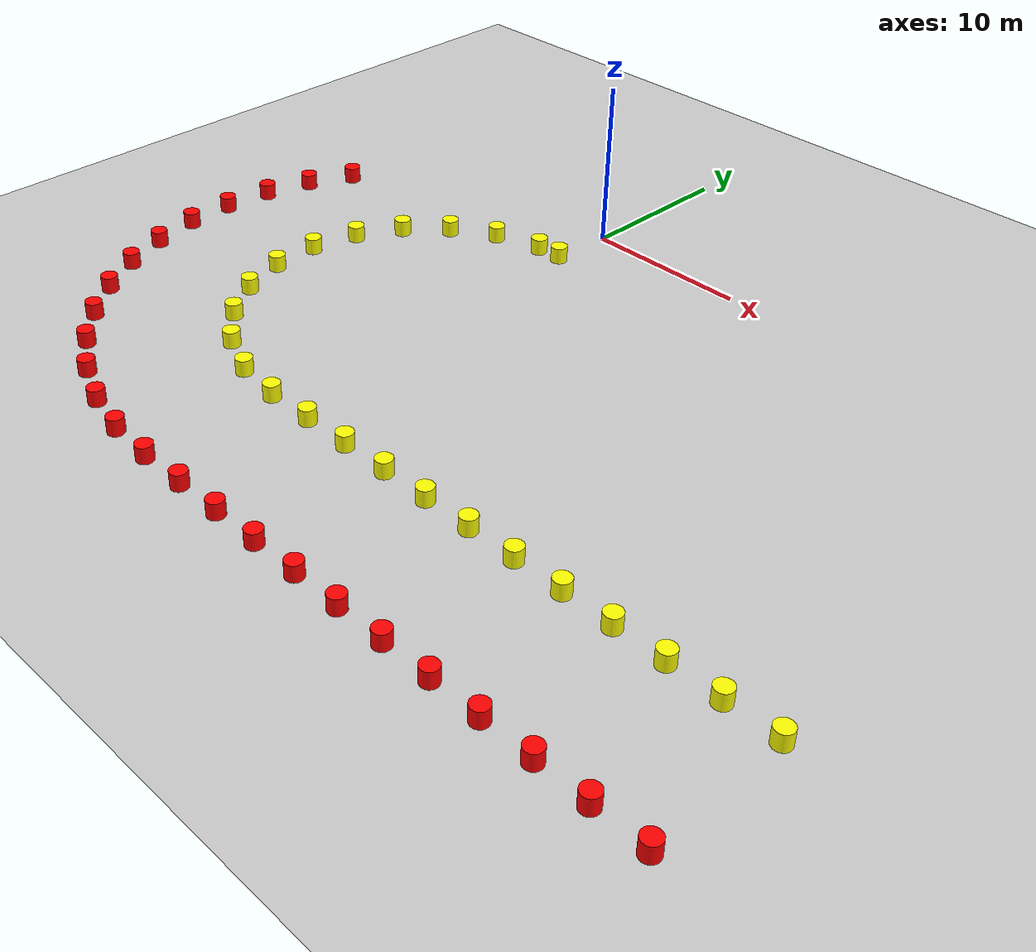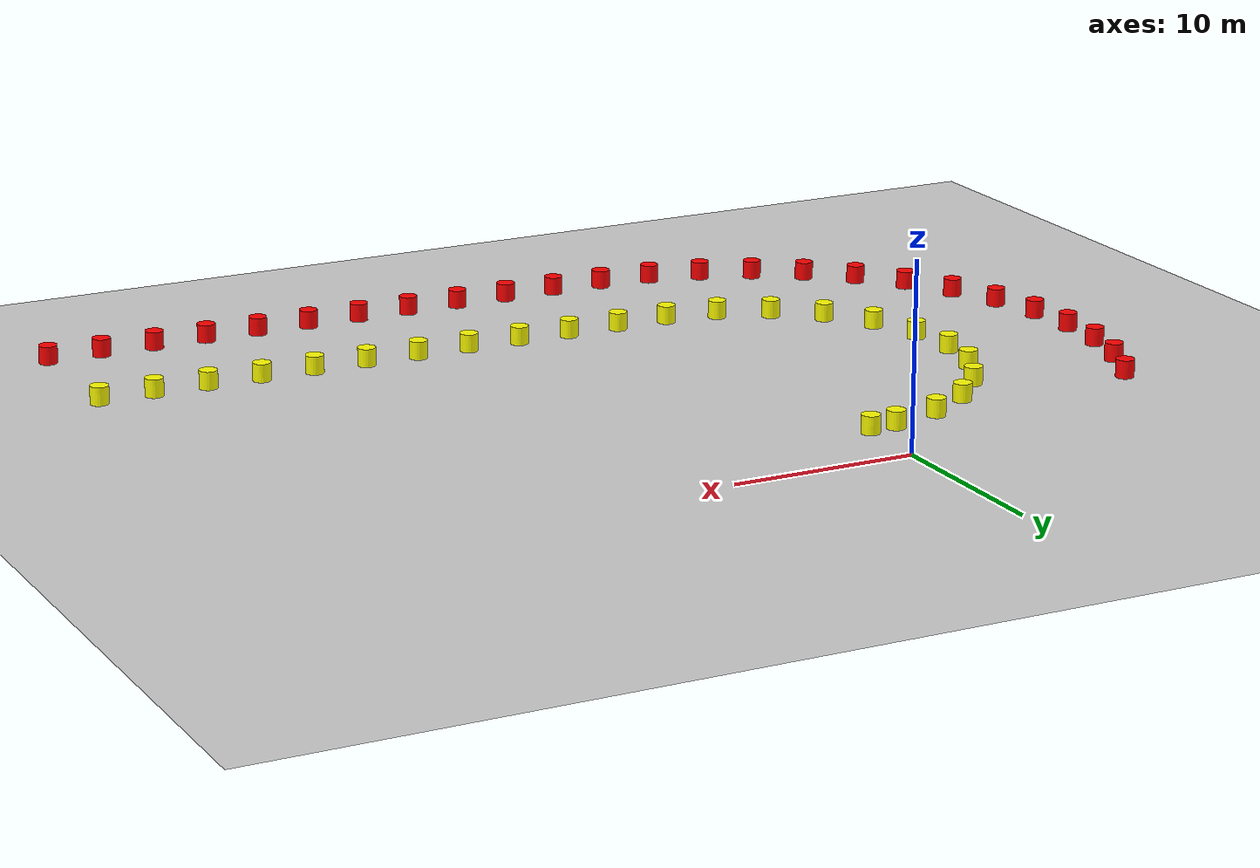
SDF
<sdf version="1.9">
 <world name="empty">
  <model name="ground_plane">
   <static>true</static>
   <link name="link">
    <collision name="collision">
     <geometry><plane><normal>0 0 1</normal><size>1000 1000</size></plane></geometry>
    </collision>
    <visual name="visual">
     <geometry><plane><normal>0 0 1</normal><size>1000 1000</size></plane></geometry>
     <material>
      <ambient>0.8 0.8 0.8 1</ambient>
      <diffuse>0.8 0.8 0.8 1</diffuse>
      <specular>0.8 0.8 0.8 1</specular>
     </material>
    </visual>
    <inertial>
     <mass>1</mass>
     <inertia><ixx>1</ixx><ixy>0</ixy><ixz>0</ixz><iyy>1</iyy><iyz>0</iyz><izz>1</izz></inertia>
    </inertial>
   </link>
  </model>
  <model name="red_cone_79">
   <pose>33.00000000000001 -34.00000000000001 0.5 0 -0 0</pose>
   <link name="cylinder_link">
    <inertial>
     <inertia>
      <ixx>0.14580000000000001</ixx>
      <ixy>0</ixy>
      <ixz>0</ixz>
      <iyy>0.14580000000000001</iyy>
      <iyz>0</iyz>
      <izz>0.125</izz>
     </inertia>
     <mass>1</mass>
    </inertial>
    <collision name="cylinder_collision">
     <geometry><cylinder><radius>0.5</radius><length>1</length></cylinder></geometry>
    </collision>
    <visual name="cylinder_visual">
     <geometry><cylinder><radius>0.5</radius><length>1</length></cylinder></geometry>
     <material><ambient>1 0 0 1</ambient><diffuse>1 0 0 1</diffuse><specular>1 1 1 1</specular></material>
    </visual>
   </link>
   <static>false</static>
  </model>
  <model name="red_cone_80">
   <pose>30.000000000000007 -34.00000000000001 0.5 0 -0 0</pose>
   <link name="cylinder_link">
    <inertial>
     <inertia>
      <ixx>0.14580000000000001</ixx>
      <ixy>0</ixy>
      <ixz>0</ixz>
      <iyy>0.14580000000000001</iyy>
      <iyz>0</iyz>
      <izz>0.125</izz>
     </inertia>
     <mass>1</mass>
    </inertial>
    <collision name="cylinder_collision">
     <geometry><cylinder><radius>0.5</radius><length>1</length></cylinder></geometry>
    </collision>
    <visual name="cylinder_visual">
     <geometry><cylinder><radius>0.5</radius><length>1</length></cylinder></geometry>
     <material><ambient>1 0 0 1</ambient><diffuse>1 0 0 1</diffuse><specular>1 1 1 1</specular></material>
    </visual>
   </link>
   <static>false</static>
  </model>
  <model name="red_cone_81">
   <pose>27.000000000000007 -34.00000000000001 0.5 0 -0 0</pose>
   <link name="cylinder_link">
    <inertial>
     <inertia>
      <ixx>0.14580000000000001</ixx>
      <ixy>0</ixy>
      <ixz>0</ixz>
      <iyy>0.14580000000000001</iyy>
      <iyz>0</iyz>
      <izz>0.125</izz>
     </inertia>
     <mass>1</mass>
    </inertial>
    <collision name="cylinder_collision">
     <geometry><cylinder><radius>0.5</radius><length>1</length></cylinder></geometry>
    </collision>
    <visual name="cylinder_visual">
     <geometry><cylinder><radius>0.5</radius><length>1</length></cylinder></geometry>
     <material><ambient>1 0 0 1</ambient><diffuse>1 0 0 1</diffuse><specular>1 1 1 1</specular></material>
    </visual>
   </link>
   <static>false</static>
  </model>
  <model name="red_cone_82">
   <pose>24.000000000000007 -34.00000000000001 0.5 0 -0 0</pose>
   <link name="cylinder_link">
    <inertial>
     <inertia>
      <ixx>0.14580000000000001</ixx>
      <ixy>0</ixy>
      <ixz>0</ixz>
      <iyy>0.14580000000000001</iyy>
      <iyz>0</iyz>
      <izz>0.125</izz>
     </inertia>
     <mass>1</mass>
    </inertial>
    <collision name="cylinder_collision">
     <geometry><cylinder><radius>0.5</radius><length>1</length></cylinder></geometry>
    </collision>
    <visual name="cylinder_visual">
     <geometry><cylinder><radius>0.5</radius><length>1</length></cylinder></geometry>
     <material><ambient>1 0 0 1</ambient><diffuse>1 0 0 1</diffuse><specular>1 1 1 1</specular></material>
    </visual>
   </link>
   <static>false</static>
  </model>
  <model name="red_cone_83">
   <pose>21.000000000000007 -34.00000000000001 0.5 0 -0 0</pose>
   <link name="cylinder_link">
    <inertial>
     <inertia>
      <ixx>0.14580000000000001</ixx>
      <ixy>0</ixy>
      <ixz>0</ixz>
      <iyy>0.14580000000000001</iyy>
      <iyz>0</iyz>
      <izz>0.125</izz>
     </inertia>
     <mass>1</mass>
    </inertial>
    <collision name="cylinder_collision">
     <geometry><cylinder><radius>0.5</radius><length>1</length></cylinder></geometry>
    </collision>
    <visual name="cylinder_visual">
     <geometry><cylinder><radius>0.5</radius><length>1</length></cylinder></geometry>
     <material><ambient>1 0 0 1</ambient><diffuse>1 0 0 1</diffuse><specular>1 1 1 1</specular></material>
    </visual>
   </link>
   <static>false</static>
  </model>
  <model name="red_cone_84">
   <pose>18.000000000000007 -34.00000000000001 0.5 0 -0 0</pose>
   <link name="cylinder_link">
    <inertial>
     <inertia>
      <ixx>0.14580000000000001</ixx>
      <ixy>0</ixy>
      <ixz>0</ixz>
      <iyy>0.14580000000000001</iyy>
      <iyz>0</iyz>
      <izz>0.125</izz>
     </inertia>
     <mass>1</mass>
    </inertial>
    <collision name="cylinder_collision">
     <geometry><cylinder><radius>0.5</radius><length>1</length></cylinder></geometry>
    </collision>
    <visual name="cylinder_visual">
     <geometry><cylinder><radius>0.5</radius><length>1</length></cylinder></geometry>
     <material><ambient>1 0 0 1</ambient><diffuse>1 0 0 1</diffuse><specular>1 1 1 1</specular></material>
    </visual>
   </link>
   <static>false</static>
  </model>
  <model name="red_cone_85">
   <pose>15.000000000000007 -34.00000000000001 0.5 0 -0 0</pose>
   <link name="cylinder_link">
    <inertial>
     <inertia>
      <ixx>0.14580000000000001</ixx>
      <ixy>0</ixy>
      <ixz>0</ixz>
      <iyy>0.14580000000000001</iyy>
      <iyz>0</iyz>
      <izz>0.125</izz>
     </inertia>
     <mass>1</mass>
    </inertial>
    <collision name="cylinder_collision">
     <geometry><cylinder><radius>0.5</radius><length>1</length></cylinder></geometry>
    </collision>
    <visual name="cylinder_visual">
     <geometry><cylinder><radius>0.5</radius><length>1</length></cylinder></geometry>
     <material><ambient>1 0 0 1</ambient><diffuse>1 0 0 1</diffuse><specular>1 1 1 1</specular></material>
    </visual>
   </link>
   <static>false</static>
  </model>
  <model name="red_cone_86">
   <pose>12.000000000000007 -34.00000000000001 0.5 0 -0 0</pose>
   <link name="cylinder_link">
    <inertial>
     <inertia>
      <ixx>0.14580000000000001</ixx>
      <ixy>0</ixy>
      <ixz>0</ixz>
      <iyy>0.14580000000000001</iyy>
      <iyz>0</iyz>
      <izz>0.125</izz>
     </inertia>
     <mass>1</mass>
    </inertial>
    <collision name="cylinder_collision">
     <geometry><cylinder><radius>0.5</radius><length>1</length></cylinder></geometry>
    </collision>
    <visual name="cylinder_visual">
     <geometry><cylinder><radius>0.5</radius><length>1</length></cylinder></geometry>
     <material><ambient>1 0 0 1</ambient><diffuse>1 0 0 1</diffuse><specular>1 1 1 1</specular></material>
    </visual>
   </link>
   <static>false</static>
  </model>
  <model name="red_cone_87">
   <pose>9.000000000000007 -34.00000000000001 0.5 0 -0 0</pose>
   <link name="cylinder_link">
    <inertial>
     <inertia>
      <ixx>0.14580000000000001</ixx>
      <ixy>0</ixy>
      <ixz>0</ixz>
      <iyy>0.14580000000000001</iyy>
      <iyz>0</iyz>
      <izz>0.125</izz>
     </inertia>
     <mass>1</mass>
    </inertial>
    <collision name="cylinder_collision">
     <geometry><cylinder><radius>0.5</radius><length>1</length></cylinder></geometry>
    </collision>
    <visual name="cylinder_visual">
     <geometry><cylinder><radius>0.5</radius><length>1</length></cylinder></geometry>
     <material><ambient>1 0 0 1</ambient><diffuse>1 0 0 1</diffuse><specular>1 1 1 1</specular></material>
    </visual>
   </link>
   <static>false</static>
  </model>
  <model name="red_cone_88">
   <pose>6.000000000000007 -34.00000000000001 0.5 0 -0 0</pose>
   <link name="cylinder_link">
    <inertial>
     <inertia>
      <ixx>0.14580000000000001</ixx>
      <ixy>0</ixy>
      <ixz>0</ixz>
      <iyy>0.14580000000000001</iyy>
      <iyz>0</iyz>
      <izz>0.125</izz>
     </inertia>
     <mass>1</mass>
    </inertial>
    <collision name="cylinder_collision">
     <geometry><cylinder><radius>0.5</radius><length>1</length></cylinder></geometry>
    </collision>
    <visual name="cylinder_visual">
     <geometry><cylinder><radius>0.5</radius><length>1</length></cylinder></geometry>
     <material><ambient>1 0 0 1</ambient><diffuse>1 0 0 1</diffuse><specular>1 1 1 1</specular></material>
    </visual>
   </link>
   <static>false</static>
  </model>
  <model name="red_cone_89">
   <pose>3.000000000000007 -34.00000000000001 0.5 0 -0 0</pose>
   <link name="cylinder_link">
    <inertial>
     <inertia>
      <ixx>0.14580000000000001</ixx>
      <ixy>0</ixy>
      <ixz>0</ixz>
      <iyy>0.14580000000000001</iyy>
      <iyz>0</iyz>
      <izz>0.125</izz>
     </inertia>
     <mass>1</mass>
    </inertial>
    <collision name="cylinder_collision">
     <geometry><cylinder><radius>0.5</radius><length>1</length></cylinder></geometry>
    </collision>
    <visual name="cylinder_visual">
     <geometry><cylinder><radius>0.5</radius><length>1</length></cylinder></geometry>
     <material><ambient>1 0 0 1</ambient><diffuse>1 0 0 1</diffuse><specular>1 1 1 1</specular></material>
    </visual>
   </link>
   <static>false</static>
  </model>
  <model name="red_cone_90">
   <pose>7.105427357601002e-15 -34.000000000000014 0.5 0 -0 0</pose>
   <link name="cylinder_link">
    <inertial>
     <inertia>
      <ixx>0.14580000000000001</ixx>
      <ixy>0</ixy>
      <ixz>0</ixz>
      <iyy>0.14580000000000001</iyy>
      <iyz>0</iyz>
      <izz>0.125</izz>
     </inertia>
     <mass>1</mass>
    </inertial>
    <collision name="cylinder_collision">
     <geometry><cylinder><radius>0.5</radius><length>1</length></cylinder></geometry>
    </collision>
    <visual name="cylinder_visual">
     <geometry><cylinder><radius>0.5</radius><length>1</length></cylinder></geometry>
     <material><ambient>1 0 0 1</ambient><diffuse>1 0 0 1</diffuse><specular>1 1 1 1</specular></material>
    </visual>
   </link>
   <static>false</static>
  </model>
  <model name="red_cone_91">
   <pose>1.059567073517096e-14 -34.000000000000014 0.5 0 -0 0</pose>
   <link name="cylinder_link">
    <inertial>
     <inertia>
      <ixx>0.14580000000000001</ixx>
      <ixy>0</ixy>
      <ixz>0</ixz>
      <iyy>0.14580000000000001</iyy>
      <iyz>0</iyz>
      <izz>0.125</izz>
     </inertia>
     <mass>1</mass>
    </inertial>
    <collision name="cylinder_collision">
     <geometry><cylinder><radius>0.5</radius><length>1</length></cylinder></geometry>
    </collision>
    <visual name="cylinder_visual">
     <geometry><cylinder><radius>0.5</radius><length>1</length></cylinder></geometry>
     <material><ambient>1 0 0 1</ambient><diffuse>1 0 0 1</diffuse><specular>1 1 1 1</specular></material>
    </visual>
   </link>
   <static>false</static>
  </model>
  <model name="red_cone_92">
   <pose>-2.987550155373228 -33.76364954024483 0.5 0 -0 0</pose>
   <link name="cylinder_link">
    <inertial>
     <inertia>
      <ixx>0.14580000000000001</ixx>
      <ixy>0</ixy>
      <ixz>0</ixz>
      <iyy>0.14580000000000001</iyy>
      <iyz>0</iyz>
      <izz>0.125</izz>
     </inertia>
     <mass>1</mass>
    </inertial>
    <collision name="cylinder_collision">
     <geometry><cylinder><radius>0.5</radius><length>1</length></cylinder></geometry>
    </collision>
    <visual name="cylinder_visual">
     <geometry><cylinder><radius>0.5</radius><length>1</length></cylinder></geometry>
     <material><ambient>1 0 0 1</ambient><diffuse>1 0 0 1</diffuse><specular>1 1 1 1</specular></material>
    </visual>
   </link>
   <static>false</static>
  </model>
  <model name="red_cone_93">
   <pose>-5.900773063087115 -33.06047832306625 0.5 0 -0 0</pose>
   <link name="cylinder_link">
    <inertial>
     <inertia>
      <ixx>0.14580000000000001</ixx>
      <ixy>0</ixy>
      <ixz>0</ixz>
      <iyy>0.14580000000000001</iyy>
      <iyz>0</iyz>
      <izz>0.125</izz>
     </inertia>
     <mass>1</mass>
    </inertial>
    <collision name="cylinder_collision">
     <geometry><cylinder><radius>0.5</radius><length>1</length></cylinder></geometry>
    </collision>
    <visual name="cylinder_visual">
     <geometry><cylinder><radius>0.5</radius><length>1</length></cylinder></geometry>
     <material><ambient>1 0 0 1</ambient><diffuse>1 0 0 1</diffuse><specular>1 1 1 1</specular></material>
    </visual>
   </link>
   <static>false</static>
  </model>
  <model name="red_cone_94">
   <pose>-8.667190662761845 -31.90798054219765 0.5 0 -0 0</pose>
   <link name="cylinder_link">
    <inertial>
     <inertia>
      <ixx>0.14580000000000001</ixx>
      <ixy>0</ixy>
      <ixz>0</ixz>
      <iyy>0.14580000000000001</iyy>
      <iyz>0</iyz>
      <izz>0.125</izz>
     </inertia>
     <mass>1</mass>
    </inertial>
    <collision name="cylinder_collision">
     <geometry><cylinder><radius>0.5</radius><length>1</length></cylinder></geometry>
    </collision>
    <visual name="cylinder_visual">
     <geometry><cylinder><radius>0.5</radius><length>1</length></cylinder></geometry>
     <material><ambient>1 0 0 1</ambient><diffuse>1 0 0 1</diffuse><specular>1 1 1 1</specular></material>
    </visual>
   </link>
   <static>false</static>
  </model>
  <model name="red_cone_95">
   <pose>-11.217977262654536 -30.3348291850469 0.5 0 -0 0</pose>
   <link name="cylinder_link">
    <inertial>
     <inertia>
      <ixx>0.14580000000000001</ixx>
      <ixy>0</ixy>
      <ixz>0</ixz>
      <iyy>0.14580000000000001</iyy>
      <iyz>0</iyz>
      <izz>0.125</izz>
     </inertia>
     <mass>1</mass>
    </inertial>
    <collision name="cylinder_collision">
     <geometry><cylinder><radius>0.5</radius><length>1</length></cylinder></geometry>
    </collision>
    <visual name="cylinder_visual">
     <geometry><cylinder><radius>0.5</radius><length>1</length></cylinder></geometry>
     <material><ambient>1 0 0 1</ambient><diffuse>1 0 0 1</diffuse><specular>1 1 1 1</specular></material>
    </visual>
   </link>
   <static>false</static>
  </model>
  <model name="red_cone_96">
   <pose>-13.489671853752284 -28.38016267756426 0.5 0 -0 0</pose>
   <link name="cylinder_link">
    <inertial>
     <inertia>
      <ixx>0.14580000000000001</ixx>
      <ixy>0</ixy>
      <ixz>0</ixz>
      <iyy>0.14580000000000001</iyy>
      <iyz>0</iyz>
      <izz>0.125</izz>
     </inertia>
     <mass>1</mass>
    </inertial>
    <collision name="cylinder_collision">
     <geometry><cylinder><radius>0.5</radius><length>1</length></cylinder></geometry>
    </collision>
    <visual name="cylinder_visual">
     <geometry><cylinder><radius>0.5</radius><length>1</length></cylinder></geometry>
     <material><ambient>1 0 0 1</ambient><diffuse>1 0 0 1</diffuse><specular>1 1 1 1</specular></material>
    </visual>
   </link>
   <static>false</static>
  </model>
  <model name="red_cone_97">
   <pose>-15.425756955946795 -26.092611159508802 0.5 0 -0 0</pose>
   <link name="cylinder_link">
    <inertial>
     <inertia>
      <ixx>0.14580000000000001</ixx>
      <ixy>0</ixy>
      <ixz>0</ixz>
      <iyy>0.14580000000000001</iyy>
      <iyz>0</iyz>
      <izz>0.125</izz>
     </inertia>
     <mass>1</mass>
    </inertial>
    <collision name="cylinder_collision">
     <geometry><cylinder><radius>0.5</radius><length>1</length></cylinder></geometry>
    </collision>
    <visual name="cylinder_visual">
     <geometry><cylinder><radius>0.5</radius><length>1</length></cylinder></geometry>
     <material><ambient>1 0 0 1</ambient><diffuse>1 0 0 1</diffuse><specular>1 1 1 1</specular></material>
    </visual>
   </link>
   <static>false</static>
  </model>
  <model name="red_cone_98">
   <pose>-16.978064716182352 -23.529086615407532 0.5 0 -0 0</pose>
   <link name="cylinder_link">
    <inertial>
     <inertia>
      <ixx>0.14580000000000001</ixx>
      <ixy>0</ixy>
      <ixz>0</ixz>
      <iyy>0.14580000000000001</iyy>
      <iyz>0</iyz>
      <izz>0.125</izz>
     </inertia>
     <mass>1</mass>
    </inertial>
    <collision name="cylinder_collision">
     <geometry><cylinder><radius>0.5</radius><length>1</length></cylinder></geometry>
    </collision>
    <visual name="cylinder_visual">
     <geometry><cylinder><radius>0.5</radius><length>1</length></cylinder></geometry>
     <material><ambient>1 0 0 1</ambient><diffuse>1 0 0 1</diffuse><specular>1 1 1 1</specular></material>
    </visual>
   </link>
   <static>false</static>
  </model>
  <model name="red_cone_99">
   <pose>-18.107975276268128 -20.753366961533242 0.5 0 -0 0</pose>
   <link name="cylinder_link">
    <inertial>
     <inertia>
      <ixx>0.14580000000000001</ixx>
      <ixy>0</ixy>
      <ixz>0</ixz>
      <iyy>0.14580000000000001</iyy>
      <iyz>0</iyz>
      <izz>0.125</izz>
     </inertia>
     <mass>1</mass>
    </inertial>
    <collision name="cylinder_collision">
     <geometry><cylinder><radius>0.5</radius><length>1</length></cylinder></geometry>
    </collision>
    <visual name="cylinder_visual">
     <geometry><cylinder><radius>0.5</radius><length>1</length></cylinder></geometry>
     <material><ambient>1 0 0 1</ambient><diffuse>1 0 0 1</diffuse><specular>1 1 1 1</specular></material>
    </visual>
   </link>
   <static>false</static>
  </model>
  <model name="red_cone_100">
   <pose>-18.787377596166355 -17.834509315395962 0.5 0 -0 0</pose>
   <link name="cylinder_link">
    <inertial>
     <inertia>
      <ixx>0.14580000000000001</ixx>
      <ixy>0</ixy>
      <ixz>0</ixz>
      <iyy>0.14580000000000001</iyy>
      <iyz>0</iyz>
      <izz>0.125</izz>
     </inertia>
     <mass>1</mass>
    </inertial>
    <collision name="cylinder_collision">
     <geometry><cylinder><radius>0.5</radius><length>1</length></cylinder></geometry>
    </collision>
    <visual name="cylinder_visual">
     <geometry><cylinder><radius>0.5</radius><length>1</length></cylinder></geometry>
     <material><ambient>1 0 0 1</ambient><diffuse>1 0 0 1</diffuse><specular>1 1 1 1</specular></material>
    </visual>
   </link>
   <static>false</static>
  </model>
  <model name="red_cone_101">
   <pose>-18.99936882843845 -14.845131924008735 0.5 0 -0 0</pose>
   <link name="cylinder_link">
    <inertial>
     <inertia>
      <ixx>0.14580000000000001</ixx>
      <ixy>0</ixy>
      <ixz>0</ixz>
      <iyy>0.14580000000000001</iyy>
      <iyz>0</iyz>
      <izz>0.125</izz>
     </inertia>
     <mass>1</mass>
    </inertial>
    <collision name="cylinder_collision">
     <geometry><cylinder><radius>0.5</radius><length>1</length></cylinder></geometry>
    </collision>
    <visual name="cylinder_visual">
     <geometry><cylinder><radius>0.5</radius><length>1</length></cylinder></geometry>
     <material><ambient>1 0 0 1</ambient><diffuse>1 0 0 1</diffuse><specular>1 1 1 1</specular></material>
    </visual>
   </link>
   <static>false</static>
  </model>
  <model name="red_cone_102">
   <pose>-18.73867484411477 -11.85960749482806 0.5 0 -0 0</pose>
   <link name="cylinder_link">
    <inertial>
     <inertia>
      <ixx>0.14580000000000001</ixx>
      <ixy>0</ixy>
      <ixz>0</ixz>
      <iyy>0.14580000000000001</iyy>
      <iyz>0</iyz>
      <izz>0.125</izz>
     </inertia>
     <mass>1</mass>
    </inertial>
    <collision name="cylinder_collision">
     <geometry><cylinder><radius>0.5</radius><length>1</length></cylinder></geometry>
    </collision>
    <visual name="cylinder_visual">
     <geometry><cylinder><radius>0.5</radius><length>1</length></cylinder></geometry>
     <material><ambient>1 0 0 1</ambient><diffuse>1 0 0 1</diffuse><specular>1 1 1 1</specular></material>
    </visual>
   </link>
   <static>false</static>
  </model>
  <model name="red_cone_103">
   <pose>-18.011781447726918 -8.952212877479894 0.5 0 -0 0</pose>
   <link name="cylinder_link">
    <inertial>
     <inertia>
      <ixx>0.14580000000000001</ixx>
      <ixy>0</ixy>
      <ixz>0</ixz>
      <iyy>0.14580000000000001</iyy>
      <iyz>0</iyz>
      <izz>0.125</izz>
     </inertia>
     <mass>1</mass>
    </inertial>
    <collision name="cylinder_collision">
     <geometry><cylinder><radius>0.5</radius><length>1</length></cylinder></geometry>
    </collision>
    <visual name="cylinder_visual">
     <geometry><cylinder><radius>0.5</radius><length>1</length></cylinder></geometry>
     <material><ambient>1 0 0 1</ambient><diffuse>1 0 0 1</diffuse><specular>1 1 1 1</specular></material>
    </visual>
   </link>
   <static>false</static>
  </model>
  <model name="red_cone_104">
   <pose>-16.836773017004315 -6.195281130332722 0.5 0 -0 0</pose>
   <link name="cylinder_link">
    <inertial>
     <inertia>
      <ixx>0.14580000000000001</ixx>
      <ixy>0</ixy>
      <ixz>0</ixz>
      <iyy>0.14580000000000001</iyy>
      <iyz>0</iyz>
      <izz>0.125</izz>
     </inertia>
     <mass>1</mass>
    </inertial>
    <collision name="cylinder_collision">
     <geometry><cylinder><radius>0.5</radius><length>1</length></cylinder></geometry>
    </collision>
    <visual name="cylinder_visual">
     <geometry><cylinder><radius>0.5</radius><length>1</length></cylinder></geometry>
     <material><ambient>1 0 0 1</ambient><diffuse>1 0 0 1</diffuse><specular>1 1 1 1</specular></material>
    </visual>
   </link>
   <static>false</static>
  </model>
  <model name="yellow_cone_0">
   <pose>2.4492935982947064e-16 -4.0 0.5 0 -0 0</pose>
   <link name="cylinder_link">
    <inertial>
     <inertia>
      <ixx>0.14580000000000001</ixx>
      <ixy>0</ixy>
      <ixz>0</ixz>
      <iyy>0.14580000000000001</iyy>
      <iyz>0</iyz>
      <izz>0.125</izz>
     </inertia>
     <mass>1</mass>
    </inertial>
    <collision name="cylinder_collision">
     <geometry><cylinder><radius>0.5</radius><length>1</length></cylinder></geometry>
    </collision>
    <visual name="cylinder_visual">
     <geometry><cylinder><radius>0.5</radius><length>1</length></cylinder></geometry>
     <material><ambient>1 1 0 1</ambient><diffuse>1 1 0 1</diffuse><specular>1 1 1 1</specular></material>
    </visual>
   </link>
   <static>false</static>
  </model>
  <model name="yellow_cone_71">
   <pose>33.0 -26.0 0.5 0 -0 0</pose>
   <link name="cylinder_link">
    <inertial>
     <inertia>
      <ixx>0.14580000000000001</ixx>
      <ixy>0</ixy>
      <ixz>0</ixz>
      <iyy>0.14580000000000001</iyy>
      <iyz>0</iyz>
      <izz>0.125</izz>
     </inertia>
     <mass>1</mass>
    </inertial>
    <collision name="cylinder_collision">
     <geometry><cylinder><radius>0.5</radius><length>1</length></cylinder></geometry>
    </collision>
    <visual name="cylinder_visual">
     <geometry><cylinder><radius>0.5</radius><length>1</length></cylinder></geometry>
     <material><ambient>1 1 0 1</ambient><diffuse>1 1 0 1</diffuse><specular>1 1 1 1</specular></material>
    </visual>
   </link>
   <static>false</static>
  </model>
  <model name="yellow_cone_72">
   <pose>30.0 -26.000000000000004 0.5 0 -0 0</pose>
   <link name="cylinder_link">
    <inertial>
     <inertia>
      <ixx>0.14580000000000001</ixx>
      <ixy>0</ixy>
      <ixz>0</ixz>
      <iyy>0.14580000000000001</iyy>
      <iyz>0</iyz>
      <izz>0.125</izz>
     </inertia>
     <mass>1</mass>
    </inertial>
    <collision name="cylinder_collision">
     <geometry><cylinder><radius>0.5</radius><length>1</length></cylinder></geometry>
    </collision>
    <visual name="cylinder_visual">
     <geometry><cylinder><radius>0.5</radius><length>1</length></cylinder></geometry>
     <material><ambient>1 1 0 1</ambient><diffuse>1 1 0 1</diffuse><specular>1 1 1 1</specular></material>
    </visual>
   </link>
   <static>false</static>
  </model>
  <model name="yellow_cone_73">
   <pose>27.0 -26.000000000000004 0.5 0 -0 0</pose>
   <link name="cylinder_link">
    <inertial>
     <inertia>
      <ixx>0.14580000000000001</ixx>
      <ixy>0</ixy>
      <ixz>0</ixz>
      <iyy>0.14580000000000001</iyy>
      <iyz>0</iyz>
      <izz>0.125</izz>
     </inertia>
     <mass>1</mass>
    </inertial>
    <collision name="cylinder_collision">
     <geometry><cylinder><radius>0.5</radius><length>1</length></cylinder></geometry>
    </collision>
    <visual name="cylinder_visual">
     <geometry><cylinder><radius>0.5</radius><length>1</length></cylinder></geometry>
     <material><ambient>1 1 0 1</ambient><diffuse>1 1 0 1</diffuse><specular>1 1 1 1</specular></material>
    </visual>
   </link>
   <static>false</static>
  </model>
  <model name="yellow_cone_74">
   <pose>24.0 -26.000000000000004 0.5 0 -0 0</pose>
   <link name="cylinder_link">
    <inertial>
     <inertia>
      <ixx>0.14580000000000001</ixx>
      <ixy>0</ixy>
      <ixz>0</ixz>
      <iyy>0.14580000000000001</iyy>
      <iyz>0</iyz>
      <izz>0.125</izz>
     </inertia>
     <mass>1</mass>
    </inertial>
    <collision name="cylinder_collision">
     <geometry><cylinder><radius>0.5</radius><length>1</length></cylinder></geometry>
    </collision>
    <visual name="cylinder_visual">
     <geometry><cylinder><radius>0.5</radius><length>1</length></cylinder></geometry>
     <material><ambient>1 1 0 1</ambient><diffuse>1 1 0 1</diffuse><specular>1 1 1 1</specular></material>
    </visual>
   </link>
   <static>false</static>
  </model>
  <model name="yellow_cone_75">
   <pose>21.0 -26.000000000000004 0.5 0 -0 0</pose>
   <link name="cylinder_link">
    <inertial>
     <inertia>
      <ixx>0.14580000000000001</ixx>
      <ixy>0</ixy>
      <ixz>0</ixz>
      <iyy>0.14580000000000001</iyy>
      <iyz>0</iyz>
      <izz>0.125</izz>
     </inertia>
     <mass>1</mass>
    </inertial>
    <collision name="cylinder_collision">
     <geometry><cylinder><radius>0.5</radius><length>1</length></cylinder></geometry>
    </collision>
    <visual name="cylinder_visual">
     <geometry><cylinder><radius>0.5</radius><length>1</length></cylinder></geometry>
     <material><ambient>1 1 0 1</ambient><diffuse>1 1 0 1</diffuse><specular>1 1 1 1</specular></material>
    </visual>
   </link>
   <static>false</static>
  </model>
  <model name="yellow_cone_76">
   <pose>18.0 -26.000000000000004 0.5 0 -0 0</pose>
   <link name="cylinder_link">
    <inertial>
     <inertia>
      <ixx>0.14580000000000001</ixx>
      <ixy>0</ixy>
      <ixz>0</ixz>
      <iyy>0.14580000000000001</iyy>
      <iyz>0</iyz>
      <izz>0.125</izz>
     </inertia>
     <mass>1</mass>
    </inertial>
    <collision name="cylinder_collision">
     <geometry><cylinder><radius>0.5</radius><length>1</length></cylinder></geometry>
    </collision>
    <visual name="cylinder_visual">
     <geometry><cylinder><radius>0.5</radius><length>1</length></cylinder></geometry>
     <material><ambient>1 1 0 1</ambient><diffuse>1 1 0 1</diffuse><specular>1 1 1 1</specular></material>
    </visual>
   </link>
   <static>false</static>
  </model>
  <model name="yellow_cone_77">
   <pose>15.0 -26.000000000000004 0.5 0 -0 0</pose>
   <link name="cylinder_link">
    <inertial>
     <inertia>
      <ixx>0.14580000000000001</ixx>
      <ixy>0</ixy>
      <ixz>0</ixz>
      <iyy>0.14580000000000001</iyy>
      <iyz>0</iyz>
      <izz>0.125</izz>
     </inertia>
     <mass>1</mass>
    </inertial>
    <collision name="cylinder_collision">
     <geometry><cylinder><radius>0.5</radius><length>1</length></cylinder></geometry>
    </collision>
    <visual name="cylinder_visual">
     <geometry><cylinder><radius>0.5</radius><length>1</length></cylinder></geometry>
     <material><ambient>1 1 0 1</ambient><diffuse>1 1 0 1</diffuse><specular>1 1 1 1</specular></material>
    </visual>
   </link>
   <static>false</static>
  </model>
  <model name="yellow_cone_78">
   <pose>12.0 -26.000000000000004 0.5 0 -0 0</pose>
   <link name="cylinder_link">
    <inertial>
     <inertia>
      <ixx>0.14580000000000001</ixx>
      <ixy>0</ixy>
      <ixz>0</ixz>
      <iyy>0.14580000000000001</iyy>
      <iyz>0</iyz>
      <izz>0.125</izz>
     </inertia>
     <mass>1</mass>
    </inertial>
    <collision name="cylinder_collision">
     <geometry><cylinder><radius>0.5</radius><length>1</length></cylinder></geometry>
    </collision>
    <visual name="cylinder_visual">
     <geometry><cylinder><radius>0.5</radius><length>1</length></cylinder></geometry>
     <material><ambient>1 1 0 1</ambient><diffuse>1 1 0 1</diffuse><specular>1 1 1 1</specular></material>
    </visual>
   </link>
   <static>false</static>
  </model>
  <model name="yellow_cone_79">
   <pose>9.0 -26.000000000000007 0.5 0 -0 0</pose>
   <link name="cylinder_link">
    <inertial>
     <inertia>
      <ixx>0.14580000000000001</ixx>
      <ixy>0</ixy>
      <ixz>0</ixz>
      <iyy>0.14580000000000001</iyy>
      <iyz>0</iyz>
      <izz>0.125</izz>
     </inertia>
     <mass>1</mass>
    </inertial>
    <collision name="cylinder_collision">
     <geometry><cylinder><radius>0.5</radius><length>1</length></cylinder></geometry>
    </collision>
    <visual name="cylinder_visual">
     <geometry><cylinder><radius>0.5</radius><length>1</length></cylinder></geometry>
     <material><ambient>1 1 0 1</ambient><diffuse>1 1 0 1</diffuse><specular>1 1 1 1</specular></material>
    </visual>
   </link>
   <static>false</static>
  </model>
  <model name="yellow_cone_80">
   <pose>6.0 -26.000000000000007 0.5 0 -0 0</pose>
   <link name="cylinder_link">
    <inertial>
     <inertia>
      <ixx>0.14580000000000001</ixx>
      <ixy>0</ixy>
      <ixz>0</ixz>
      <iyy>0.14580000000000001</iyy>
      <iyz>0</iyz>
      <izz>0.125</izz>
     </inertia>
     <mass>1</mass>
    </inertial>
    <collision name="cylinder_collision">
     <geometry><cylinder><radius>0.5</radius><length>1</length></cylinder></geometry>
    </collision>
    <visual name="cylinder_visual">
     <geometry><cylinder><radius>0.5</radius><length>1</length></cylinder></geometry>
     <material><ambient>1 1 0 1</ambient><diffuse>1 1 0 1</diffuse><specular>1 1 1 1</specular></material>
    </visual>
   </link>
   <static>false</static>
  </model>
  <model name="yellow_cone_81">
   <pose>3.0 -26.000000000000007 0.5 0 -0 0</pose>
   <link name="cylinder_link">
    <inertial>
     <inertia>
      <ixx>0.14580000000000001</ixx>
      <ixy>0</ixy>
      <ixz>0</ixz>
      <iyy>0.14580000000000001</iyy>
      <iyz>0</iyz>
      <izz>0.125</izz>
     </inertia>
     <mass>1</mass>
    </inertial>
    <collision name="cylinder_collision">
     <geometry><cylinder><radius>0.5</radius><length>1</length></cylinder></geometry>
    </collision>
    <visual name="cylinder_visual">
     <geometry><cylinder><radius>0.5</radius><length>1</length></cylinder></geometry>
     <material><ambient>1 1 0 1</ambient><diffuse>1 1 0 1</diffuse><specular>1 1 1 1</specular></material>
    </visual>
   </link>
   <static>false</static>
  </model>
  <model name="yellow_cone_82">
   <pose>0.0 -26.000000000000007 0.5 0 -0 0</pose>
   <link name="cylinder_link">
    <inertial>
     <inertia>
      <ixx>0.14580000000000001</ixx>
      <ixy>0</ixy>
      <ixz>0</ixz>
      <iyy>0.14580000000000001</iyy>
      <iyz>0</iyz>
      <izz>0.125</izz>
     </inertia>
     <mass>1</mass>
    </inertial>
    <collision name="cylinder_collision">
     <geometry><cylinder><radius>0.5</radius><length>1</length></cylinder></geometry>
    </collision>
    <visual name="cylinder_visual">
     <geometry><cylinder><radius>0.5</radius><length>1</length></cylinder></geometry>
     <material><ambient>1 1 0 1</ambient><diffuse>1 1 0 1</diffuse><specular>1 1 1 1</specular></material>
    </visual>
   </link>
   <static>false</static>
  </model>
  <model name="yellow_cone_83">
   <pose>2.0206672185931327e-15 -26.000000000000007 0.5 0 -0 0</pose>
   <link name="cylinder_link">
    <inertial>
     <inertia>
      <ixx>0.14580000000000001</ixx>
      <ixy>0</ixy>
      <ixz>0</ixz>
      <iyy>0.14580000000000001</iyy>
      <iyz>0</iyz>
      <izz>0.125</izz>
     </inertia>
     <mass>1</mass>
    </inertial>
    <collision name="cylinder_collision">
     <geometry><cylinder><radius>0.5</radius><length>1</length></cylinder></geometry>
    </collision>
    <visual name="cylinder_visual">
     <geometry><cylinder><radius>0.5</radius><length>1</length></cylinder></geometry>
     <material><ambient>1 1 0 1</ambient><diffuse>1 1 0 1</diffuse><specular>1 1 1 1</specular></material>
    </visual>
   </link>
   <static>false</static>
  </model>
  <model name="yellow_cone_84">
   <pose>-2.9629479828915897 -25.59343849987712 0.5 0 -0 0</pose>
   <link name="cylinder_link">
    <inertial>
     <inertia>
      <ixx>0.14580000000000001</ixx>
      <ixy>0</ixy>
      <ixz>0</ixz>
      <iyy>0.14580000000000001</iyy>
      <iyz>0</iyz>
      <izz>0.125</izz>
     </inertia>
     <mass>1</mass>
    </inertial>
    <collision name="cylinder_collision">
     <geometry><cylinder><radius>0.5</radius><length>1</length></cylinder></geometry>
    </collision>
    <visual name="cylinder_visual">
     <geometry><cylinder><radius>0.5</radius><length>1</length></cylinder></geometry>
     <material><ambient>1 1 0 1</ambient><diffuse>1 1 0 1</diffuse><specular>1 1 1 1</specular></material>
    </visual>
   </link>
   <static>false</static>
  </model>
  <model name="yellow_cone_85">
   <pose>-5.706874042744895 -24.403807136487046 0.5 0 -0 0</pose>
   <link name="cylinder_link">
    <inertial>
     <inertia>
      <ixx>0.14580000000000001</ixx>
      <ixy>0</ixy>
      <ixz>0</ixz>
      <iyy>0.14580000000000001</iyy>
      <iyz>0</iyz>
      <izz>0.125</izz>
     </inertia>
     <mass>1</mass>
    </inertial>
    <collision name="cylinder_collision">
     <geometry><cylinder><radius>0.5</radius><length>1</length></cylinder></geometry>
    </collision>
    <visual name="cylinder_visual">
     <geometry><cylinder><radius>0.5</radius><length>1</length></cylinder></geometry>
     <material><ambient>1 1 0 1</ambient><diffuse>1 1 0 1</diffuse><specular>1 1 1 1</specular></material>
    </visual>
   </link>
   <static>false</static>
  </model>
  <model name="yellow_cone_86">
   <pose>-8.028946416810813 -22.51904378468306 0.5 0 -0 0</pose>
   <link name="cylinder_link">
    <inertial>
     <inertia>
      <ixx>0.14580000000000001</ixx>
      <ixy>0</ixy>
      <ixz>0</ixz>
      <iyy>0.14580000000000001</iyy>
      <iyz>0</iyz>
      <izz>0.125</izz>
     </inertia>
     <mass>1</mass>
    </inertial>
    <collision name="cylinder_collision">
     <geometry><cylinder><radius>0.5</radius><length>1</length></cylinder></geometry>
    </collision>
    <visual name="cylinder_visual">
     <geometry><cylinder><radius>0.5</radius><length>1</length></cylinder></geometry>
     <material><ambient>1 1 0 1</ambient><diffuse>1 1 0 1</diffuse><specular>1 1 1 1</specular></material>
    </visual>
   </link>
   <static>false</static>
  </model>
  <model name="yellow_cone_87">
   <pose>-9.757516881854023 -20.078470665498998 0.5 0 -0 0</pose>
   <link name="cylinder_link">
    <inertial>
     <inertia>
      <ixx>0.14580000000000001</ixx>
      <ixy>0</ixy>
      <ixz>0</ixz>
      <iyy>0.14580000000000001</iyy>
      <iyz>0</iyz>
      <izz>0.125</izz>
     </inertia>
     <mass>1</mass>
    </inertial>
    <collision name="cylinder_collision">
     <geometry><cylinder><radius>0.5</radius><length>1</length></cylinder></geometry>
    </collision>
    <visual name="cylinder_visual">
     <geometry><cylinder><radius>0.5</radius><length>1</length></cylinder></geometry>
     <material><ambient>1 1 0 1</ambient><diffuse>1 1 0 1</diffuse><specular>1 1 1 1</specular></material>
    </visual>
   </link>
   <static>false</static>
  </model>
  <model name="yellow_cone_88">
   <pose>-10.764809037631599 -17.262495609570347 0.5 0 -0 0</pose>
   <link name="cylinder_link">
    <inertial>
     <inertia>
      <ixx>0.14580000000000001</ixx>
      <ixy>0</ixy>
      <ixz>0</ixz>
      <iyy>0.14580000000000001</iyy>
      <iyz>0</iyz>
      <izz>0.125</izz>
     </inertia>
     <mass>1</mass>
    </inertial>
    <collision name="cylinder_collision">
     <geometry><cylinder><radius>0.5</radius><length>1</length></cylinder></geometry>
    </collision>
    <visual name="cylinder_visual">
     <geometry><cylinder><radius>0.5</radius><length>1</length></cylinder></geometry>
     <material><ambient>1 1 0 1</ambient><diffuse>1 1 0 1</diffuse><specular>1 1 1 1</specular></material>
    </visual>
   </link>
   <static>false</static>
  </model>
  <model name="yellow_cone_89">
   <pose>-10.976363573249927 -14.27927626108743 0.5 0 -0 0</pose>
   <link name="cylinder_link">
    <inertial>
     <inertia>
      <ixx>0.14580000000000001</ixx>
      <ixy>0</ixy>
      <ixz>0</ixz>
      <iyy>0.14580000000000001</iyy>
      <iyz>0</iyz>
      <izz>0.125</izz>
     </inertia>
     <mass>1</mass>
    </inertial>
    <collision name="cylinder_collision">
     <geometry><cylinder><radius>0.5</radius><length>1</length></cylinder></geometry>
    </collision>
    <visual name="cylinder_visual">
     <geometry><cylinder><radius>0.5</radius><length>1</length></cylinder></geometry>
     <material><ambient>1 1 0 1</ambient><diffuse>1 1 0 1</diffuse><specular>1 1 1 1</specular></material>
    </visual>
   </link>
   <static>false</static>
  </model>
  <model name="yellow_cone_90">
   <pose>-10.376542319734678 -11.349333007962073 0.5 0 -0 0</pose>
   <link name="cylinder_link">
    <inertial>
     <inertia>
      <ixx>0.14580000000000001</ixx>
      <ixy>0</ixy>
      <ixz>0</ixz>
      <iyy>0.14580000000000001</iyy>
      <iyz>0</iyz>
      <izz>0.125</izz>
     </inertia>
     <mass>1</mass>
    </inertial>
    <collision name="cylinder_collision">
     <geometry><cylinder><radius>0.5</radius><length>1</length></cylinder></geometry>
    </collision>
    <visual name="cylinder_visual">
     <geometry><cylinder><radius>0.5</radius><length>1</length></cylinder></geometry>
     <material><ambient>1 1 0 1</ambient><diffuse>1 1 0 1</diffuse><specular>1 1 1 1</specular></material>
    </visual>
   </link>
   <static>false</static>
  </model>
  <model name="yellow_cone_91">
   <pose>-9.009684227746707 -8.689248054606159 0.5 0 -0 0</pose>
   <link name="cylinder_link">
    <inertial>
     <inertia>
      <ixx>0.14580000000000001</ixx>
      <ixy>0</ixy>
      <ixz>0</ixz>
      <iyy>0.14580000000000001</iyy>
      <iyz>0</iyz>
      <izz>0.125</izz>
     </inertia>
     <mass>1</mass>
    </inertial>
    <collision name="cylinder_collision">
     <geometry><cylinder><radius>0.5</radius><length>1</length></cylinder></geometry>
    </collision>
    <visual name="cylinder_visual">
     <geometry><cylinder><radius>0.5</radius><length>1</length></cylinder></geometry>
     <material><ambient>1 1 0 1</ambient><diffuse>1 1 0 1</diffuse><specular>1 1 1 1</specular></material>
    </visual>
   </link>
   <static>false</static>
  </model>
  <model name="yellow_cone_92">
   <pose>-6.976827820255789 -6.495655606308928 0.5 0 -0 0</pose>
   <link name="cylinder_link">
    <inertial>
     <inertia>
      <ixx>0.14580000000000001</ixx>
      <ixy>0</ixy>
      <ixz>0</ixz>
      <iyy>0.14580000000000001</iyy>
      <iyz>0</iyz>
      <izz>0.125</izz>
     </inertia>
     <mass>1</mass>
    </inertial>
    <collision name="cylinder_collision">
     <geometry><cylinder><radius>0.5</radius><length>1</length></cylinder></geometry>
    </collision>
    <visual name="cylinder_visual">
     <geometry><cylinder><radius>0.5</radius><length>1</length></cylinder></geometry>
     <material><ambient>1 1 0 1</ambient><diffuse>1 1 0 1</diffuse><specular>1 1 1 1</specular></material>
    </visual>
   </link>
   <static>false</static>
  </model>
  <model name="yellow_cone_93">
   <pose>-4.428242397364472 -4.930706615150017 0.5 0 -0 0</pose>
   <link name="cylinder_link">
    <inertial>
     <inertia>
      <ixx>0.14580000000000001</ixx>
      <ixy>0</ixy>
      <ixz>0</ixz>
      <iyy>0.14580000000000001</iyy>
      <iyz>0</iyz>
      <izz>0.125</izz>
     </inertia>
     <mass>1</mass>
    </inertial>
    <collision name="cylinder_collision">
     <geometry><cylinder><radius>0.5</radius><length>1</length></cylinder></geometry>
    </collision>
    <visual name="cylinder_visual">
     <geometry><cylinder><radius>0.5</radius><length>1</length></cylinder></geometry>
     <material><ambient>1 1 0 1</ambient><diffuse>1 1 0 1</diffuse><specular>1 1 1 1</specular></material>
    </visual>
   </link>
   <static>false</static>
  </model>
  <model name="yellow_cone_94">
   <pose>-1.552320088658544 -4.110082537395108 0.5 0 -0 0</pose>
   <link name="cylinder_link">
    <inertial>
     <inertia>
      <ixx>0.14580000000000001</ixx>
      <ixy>0</ixy>
      <ixz>0</ixz>
      <iyy>0.14580000000000001</iyy>
      <iyz>0</iyz>
      <izz>0.125</izz>
     </inertia>
     <mass>1</mass>
    </inertial>
    <collision name="cylinder_collision">
     <geometry><cylinder><radius>0.5</radius><length>1</length></cylinder></geometry>
    </collision>
    <visual name="cylinder_visual">
     <geometry><cylinder><radius>0.5</radius><length>1</length></cylinder></geometry>
     <material><ambient>1 1 0 1</ambient><diffuse>1 1 0 1</diffuse><specular>1 1 1 1</specular></material>
    </visual>
   </link>
   <static>false</static>
  </model>
 </world>
</sdf>
